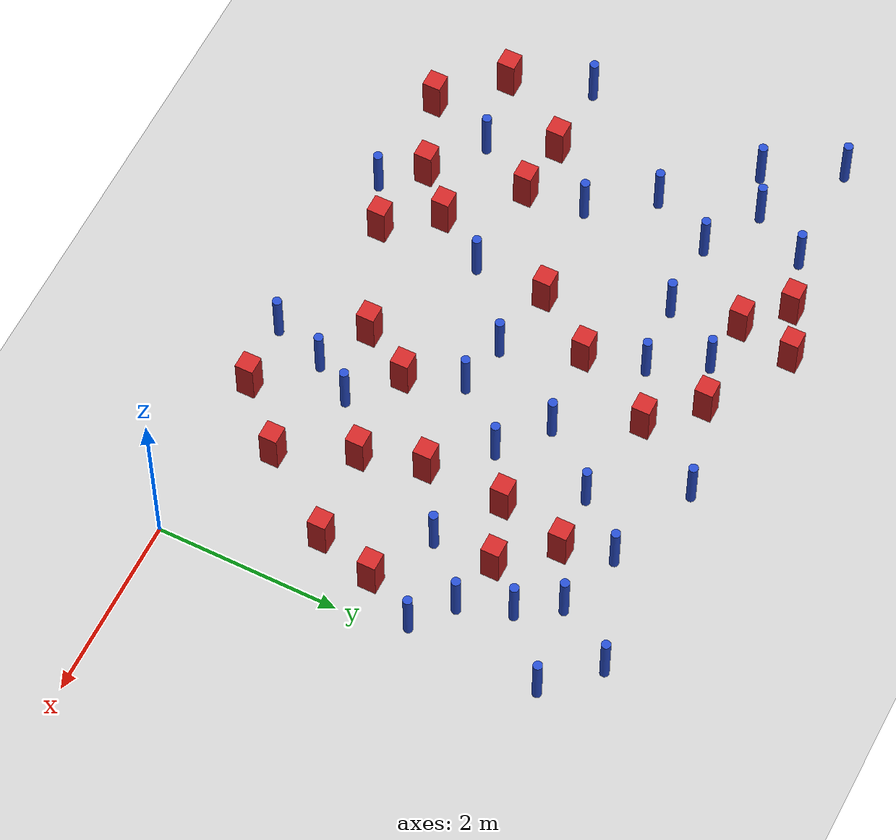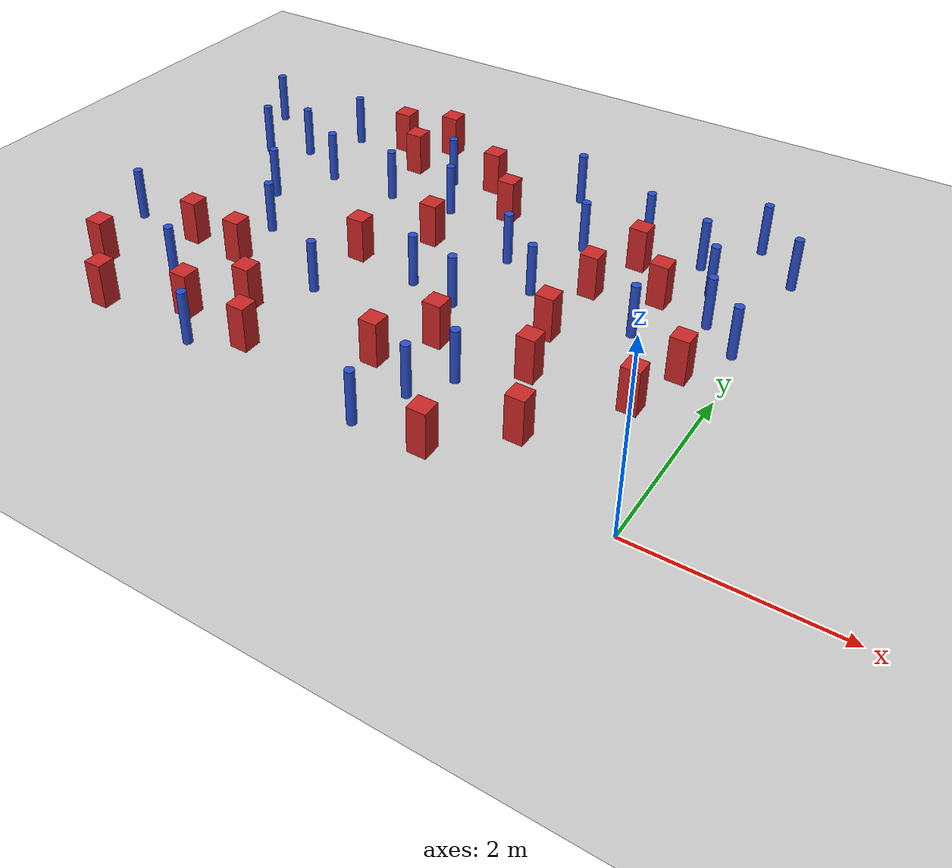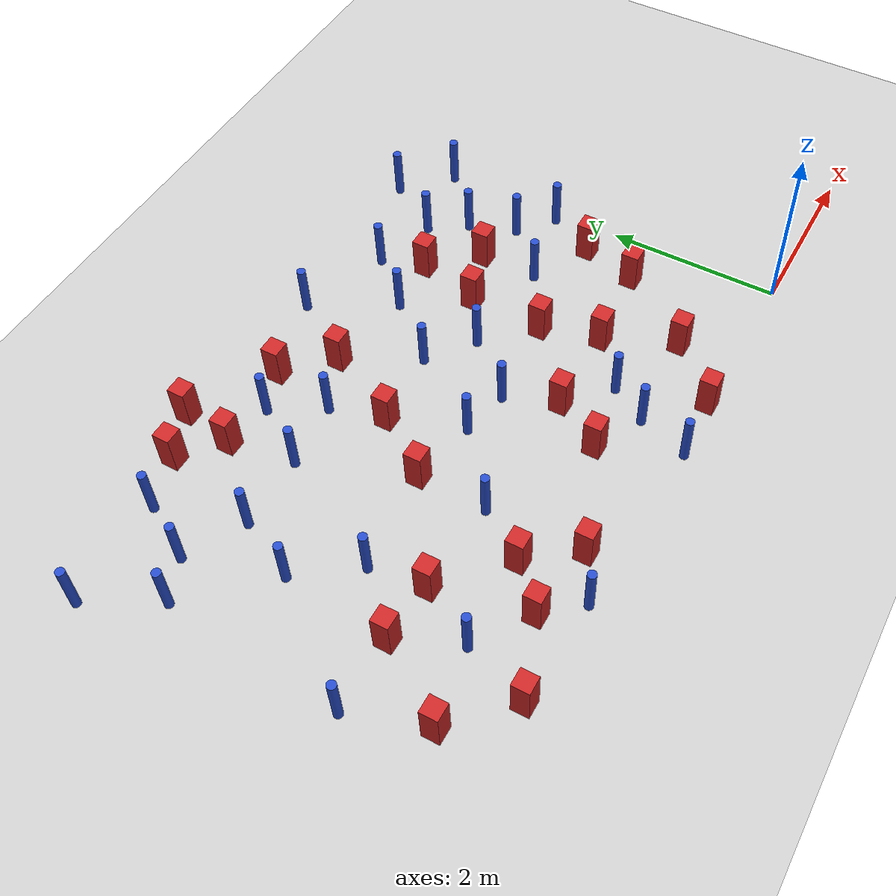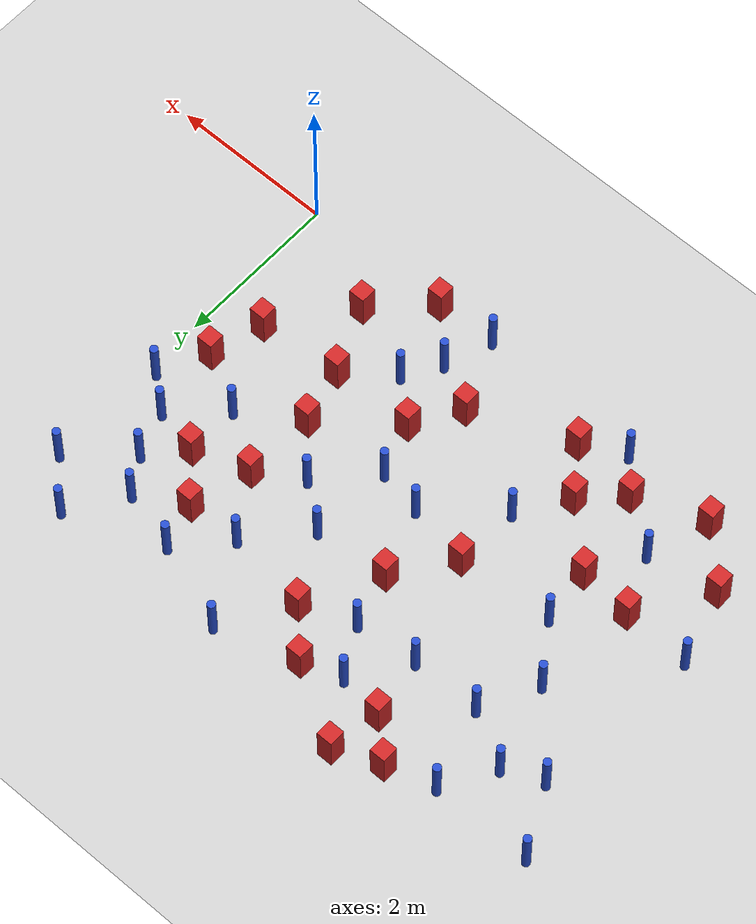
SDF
<sdf version="1.6">
 <world name="default">
  <model name="ground_plane">
   <static>1</static>
   <link name="link">
    <collision name="collision">
     <geometry><plane><normal>0 0 1</normal><size>100 100</size></plane></geometry>
     <surface><friction><ode><mu>100</mu><mu2>50</mu2></ode></friction></surface>
    </collision>
    <visual name="visual">
     <cast_shadows>0</cast_shadows>
     <geometry><plane><normal>0 0 1</normal><size>100 100</size></plane></geometry>
     <material>
      <ambient>1.0 1.0 1.0 1.0</ambient>
      <diffuse>0.8 0.8 0.8 1.0</diffuse>
      <specular>0.01 0.01 0.01 1.000000</specular>
     </material>
    </visual>
   </link>
  </model>
  <model name="square_post_obstacle1">
   <static>true</static>
   <pose>-1.78963820657 2.10112155441 8.22691968438e-08 7.2212513382e-06 -7.54495500217e-07 2.29674213826e-05</pose>
   <link name="link">
    <pose>0 0 0.25 0 -0 0</pose>
    <inertial>
     <mass>100</mass>
     <inertia>
      <ixx>0.166667</ixx>
      <ixy>0</ixy>
      <ixz>0</ixz>
      <iyy>0.166667</iyy>
      <iyz>0</iyz>
      <izz>0.166667</izz>
     </inertia>
    </inertial>
    <collision name="collision"><geometry><box><size>.2 .2 .5</size></box></geometry></collision>
    <visual name="visual">
     <geometry><box><size>.2 .2 .5</size></box></geometry>
     <material>
      <script><name>Gazebo/Red</name><uri>file://media/materials/scripts/gazebo.material</uri></script>
     </material>
    </visual>
   </link>
  </model>
  <model name="pole_obstacle3">
   <static>true</static>
   <pose>-2.15087941824 0.98724646966 2.88873142074e-08 -9.90536689701e-09 4.60219948992e-07 -1.20965994959e-07</pose>
   <link name="link">
    <pose>0 0 0.3 0 -0 0</pose>
    <inertial>
     <mass>1</mass>
     <inertia><ixx>0.145833</ixx><ixy>0</ixy><ixz>0</ixz><iyy>0.145833</iyy><iyz>0</iyz><izz>0.125</izz></inertia>
    </inertial>
    <collision name="collision">
     <geometry><cylinder><radius>0.05</radius><length>.6</length></cylinder></geometry>
    </collision>
    <visual name="visual">
     <geometry><cylinder><radius>0.05</radius><length>.6</length></cylinder></geometry>
     <material>
      <script><name>Gazebo/Blue</name><uri>file://media/materials/scripts/gazebo.material</uri></script>
     </material>
    </visual>
   </link>
  </model>
  <model name="square_post_obstacle7">
   <static>true</static>
   <pose>-5.01786289002 0.467314771592 8.22691968438e-08 7.2212513382e-06 -7.54495500217e-07 2.29674213826e-05</pose>
   <link name="link">
    <pose>0 0 0.25 0 -0 0</pose>
    <inertial>
     <mass>100</mass>
     <inertia>
      <ixx>0.166667</ixx>
      <ixy>0</ixy>
      <ixz>0</ixz>
      <iyy>0.166667</iyy>
      <iyz>0</iyz>
      <izz>0.166667</izz>
     </inertia>
    </inertial>
    <collision name="collision"><geometry><box><size>.2 .2 .5</size></box></geometry></collision>
    <visual name="visual">
     <geometry><box><size>.2 .2 .5</size></box></geometry>
     <material>
      <script><name>Gazebo/Red</name><uri>file://media/materials/scripts/gazebo.material</uri></script>
     </material>
    </visual>
   </link>
  </model>
  <model name="square_post_obstacle12">
   <static>true</static>
   <pose>-1.87809703781 0.0274566132606 8.22691968438e-08 7.2212513382e-06 -7.54495500217e-07 2.29674213826e-05</pose>
   <link name="link">
    <pose>0 0 0.25 0 -0 0</pose>
    <inertial>
     <mass>100</mass>
     <inertia>
      <ixx>0.166667</ixx>
      <ixy>0</ixy>
      <ixz>0</ixz>
      <iyy>0.166667</iyy>
      <iyz>0</iyz>
      <izz>0.166667</izz>
     </inertia>
    </inertial>
    <collision name="collision"><geometry><box><size>.2 .2 .5</size></box></geometry></collision>
    <visual name="visual">
     <geometry><box><size>.2 .2 .5</size></box></geometry>
     <material>
      <script><name>Gazebo/Red</name><uri>file://media/materials/scripts/gazebo.material</uri></script>
     </material>
    </visual>
   </link>
  </model>
  <model name="square_post_obstacle15">
   <static>true</static>
   <pose>-1.09674026211 3.2081970894 8.22691968438e-08 7.22125133819e-06 -7.54495500217e-07 2.29674213826e-05</pose>
   <link name="link">
    <pose>0 0 0.25 0 -0 0</pose>
    <inertial>
     <mass>100</mass>
     <inertia>
      <ixx>0.166667</ixx>
      <ixy>0</ixy>
      <ixz>0</ixz>
      <iyy>0.166667</iyy>
      <iyz>0</iyz>
      <izz>0.166667</izz>
     </inertia>
    </inertial>
    <collision name="collision"><geometry><box><size>.2 .2 .5</size></box></geometry></collision>
    <visual name="visual">
     <geometry><box><size>.2 .2 .5</size></box></geometry>
     <material>
      <script><name>Gazebo/Red</name><uri>file://media/materials/scripts/gazebo.material</uri></script>
     </material>
    </visual>
   </link>
  </model>
  <model name="square_post_obstacle18">
   <static>true</static>
   <pose>-1.26172231099 0.629585137746 8.22691968438e-08 7.2212513382e-06 -7.54495500217e-07 2.29674213826e-05</pose>
   <link name="link">
    <pose>0 0 0.25 0 -0 0</pose>
    <inertial>
     <mass>100</mass>
     <inertia>
      <ixx>0.166667</ixx>
      <ixy>0</ixy>
      <ixz>0</ixz>
      <iyy>0.166667</iyy>
      <iyz>0</iyz>
      <izz>0.166667</izz>
     </inertia>
    </inertial>
    <collision name="collision"><geometry><box><size>.2 .2 .5</size></box></geometry></collision>
    <visual name="visual">
     <geometry><box><size>.2 .2 .5</size></box></geometry>
     <material>
      <script><name>Gazebo/Red</name><uri>file://media/materials/scripts/gazebo.material</uri></script>
     </material>
    </visual>
   </link>
  </model>
  <model name="pole_obstacle11">
   <static>true</static>
   <pose>-5.76309928605 4.44789576285 2.88873142074e-08 -9.90536690842e-09 4.60219948965e-07 -1.20965994976e-07</pose>
   <link name="link">
    <pose>0 0 0.3 0 -0 0</pose>
    <inertial>
     <mass>1</mass>
     <inertia><ixx>0.145833</ixx><ixy>0</ixy><ixz>0</ixz><iyy>0.145833</iyy><iyz>0</iyz><izz>0.125</izz></inertia>
    </inertial>
    <collision name="collision">
     <geometry><cylinder><radius>0.05</radius><length>.6</length></cylinder></geometry>
    </collision>
    <visual name="visual">
     <geometry><cylinder><radius>0.05</radius><length>.6</length></cylinder></geometry>
     <material>
      <script><name>Gazebo/Blue</name><uri>file://media/materials/scripts/gazebo.material</uri></script>
     </material>
    </visual>
   </link>
  </model>
  <model name="square_post_obstacle22">
   <static>true</static>
   <pose>-3.24477735342 3.83881500266 8.22691968438e-08 7.2212513382e-06 -7.54495500217e-07 2.29674213826e-05</pose>
   <link name="link">
    <pose>0 0 0.25 0 -0 0</pose>
    <inertial>
     <mass>100</mass>
     <inertia>
      <ixx>0.166667</ixx>
      <ixy>0</ixy>
      <ixz>0</ixz>
      <iyy>0.166667</iyy>
      <iyz>0</iyz>
      <izz>0.166667</izz>
     </inertia>
    </inertial>
    <collision name="collision"><geometry><box><size>.2 .2 .5</size></box></geometry></collision>
    <visual name="visual">
     <geometry><box><size>.2 .2 .5</size></box></geometry>
     <material>
      <script><name>Gazebo/Red</name><uri>file://media/materials/scripts/gazebo.material</uri></script>
     </material>
    </visual>
   </link>
  </model>
  <model name="pole_obstacle14">
   <static>true</static>
   <pose>-2.21424441425 3.69005767806 2.88873142074e-08 -9.90536690232e-09 4.6021994898e-07 -1.20965994968e-07</pose>
   <link name="link">
    <pose>0 0 0.3 0 -0 0</pose>
    <inertial>
     <mass>1</mass>
     <inertia><ixx>0.145833</ixx><ixy>0</ixy><ixz>0</ixz><iyy>0.145833</iyy><iyz>0</iyz><izz>0.125</izz></inertia>
    </inertial>
    <collision name="collision">
     <geometry><cylinder><radius>0.05</radius><length>.6</length></cylinder></geometry>
    </collision>
    <visual name="visual">
     <geometry><cylinder><radius>0.05</radius><length>.6</length></cylinder></geometry>
     <material>
      <script><name>Gazebo/Blue</name><uri>file://media/materials/scripts/gazebo.material</uri></script>
     </material>
    </visual>
   </link>
  </model>
  <model name="square_post_obstacle29">
   <static>true</static>
   <pose>-4.64062499272 4.85331166047 8.22691968438e-08 7.2212513382e-06 -7.54495500217e-07 2.29674213826e-05</pose>
   <link name="link">
    <pose>0 0 0.25 0 -0 0</pose>
    <inertial>
     <mass>100</mass>
     <inertia>
      <ixx>0.166667</ixx>
      <ixy>0</ixy>
      <ixz>0</ixz>
      <iyy>0.166667</iyy>
      <iyz>0</iyz>
      <izz>0.166667</izz>
     </inertia>
    </inertial>
    <collision name="collision"><geometry><box><size>.2 .2 .5</size></box></geometry></collision>
    <visual name="visual">
     <geometry><box><size>.2 .2 .5</size></box></geometry>
     <material>
      <script><name>Gazebo/Red</name><uri>file://media/materials/scripts/gazebo.material</uri></script>
     </material>
    </visual>
   </link>
  </model>
  <model name="pole_obstacle42">
   <static>true</static>
   <pose>-6.74005997867 1.59109194103 2.88873142074e-08 -9.90536689445e-09 4.60219948999e-07 -1.20965994956e-07</pose>
   <link name="link">
    <pose>0 0 0.3 0 -0 0</pose>
    <inertial>
     <mass>1</mass>
     <inertia><ixx>0.145833</ixx><ixy>0</ixy><ixz>0</ixz><iyy>0.145833</iyy><iyz>0</iyz><izz>0.125</izz></inertia>
    </inertial>
    <collision name="collision">
     <geometry><cylinder><radius>0.05</radius><length>.6</length></cylinder></geometry>
    </collision>
    <visual name="visual">
     <geometry><cylinder><radius>0.05</radius><length>.6</length></cylinder></geometry>
     <material>
      <script><name>Gazebo/Blue</name><uri>file://media/materials/scripts/gazebo.material</uri></script>
     </material>
    </visual>
   </link>
  </model>
  <model name="pole_obstacle44">
   <static>true</static>
   <pose>-5.46587398347 3.49106499663 2.88873142074e-08 -9.90536690245e-09 4.6021994898e-07 -1.20965994966e-07</pose>
   <link name="link">
    <pose>0 0 0.3 0 -0 0</pose>
    <inertial>
     <mass>1</mass>
     <inertia><ixx>0.145833</ixx><ixy>0</ixy><ixz>0</ixz><iyy>0.145833</iyy><iyz>0</iyz><izz>0.125</izz></inertia>
    </inertial>
    <collision name="collision">
     <geometry><cylinder><radius>0.05</radius><length>.6</length></cylinder></geometry>
    </collision>
    <visual name="visual">
     <geometry><cylinder><radius>0.05</radius><length>.6</length></cylinder></geometry>
     <material>
      <script><name>Gazebo/Blue</name><uri>file://media/materials/scripts/gazebo.material</uri></script>
     </material>
    </visual>
   </link>
  </model>
  <model name="pole_obstacle48">
   <static>true</static>
   <pose>-2.73074959858 4.61885092774 2.88873142074e-08 -9.90536689859e-09 4.60219948989e-07 -1.20965994961e-07</pose>
   <link name="link">
    <pose>0 0 0.3 0 -0 0</pose>
    <inertial>
     <mass>1</mass>
     <inertia><ixx>0.145833</ixx><ixy>0</ixy><ixz>0</ixz><iyy>0.145833</iyy><iyz>0</iyz><izz>0.125</izz></inertia>
    </inertial>
    <collision name="collision">
     <geometry><cylinder><radius>0.05</radius><length>.6</length></cylinder></geometry>
    </collision>
    <visual name="visual">
     <geometry><cylinder><radius>0.05</radius><length>.6</length></cylinder></geometry>
     <material>
      <script><name>Gazebo/Blue</name><uri>file://media/materials/scripts/gazebo.material</uri></script>
     </material>
    </visual>
   </link>
  </model>
  <model name="square_post_obstacle50">
   <static>true</static>
   <pose>-0.421134184235 2.17919900012 8.22691968438e-08 7.2212513382e-06 -7.54495500217e-07 2.29674213826e-05</pose>
   <link name="link">
    <pose>0 0 0.25 0 -0 0</pose>
    <inertial>
     <mass>100</mass>
     <inertia>
      <ixx>0.166667</ixx>
      <ixy>0</ixy>
      <ixz>0</ixz>
      <iyy>0.166667</iyy>
      <iyz>0</iyz>
      <izz>0.166667</izz>
     </inertia>
    </inertial>
    <collision name="collision"><geometry><box><size>.2 .2 .5</size></box></geometry></collision>
    <visual name="visual">
     <geometry><box><size>.2 .2 .5</size></box></geometry>
     <material>
      <script><name>Gazebo/Red</name><uri>file://media/materials/scripts/gazebo.material</uri></script>
     </material>
    </visual>
   </link>
  </model>
  <model name="pole_obstacle54">
   <static>true</static>
   <pose>-4.19496934189 1.46841636191 2.88873142074e-08 -9.90536689445e-09 4.60219948999e-07 -1.20965994956e-07</pose>
   <link name="link">
    <pose>0 0 0.3 0 -0 0</pose>
    <inertial>
     <mass>1</mass>
     <inertia><ixx>0.145833</ixx><ixy>0</ixy><ixz>0</ixz><iyy>0.145833</iyy><iyz>0</iyz><izz>0.125</izz></inertia>
    </inertial>
    <collision name="collision">
     <geometry><cylinder><radius>0.05</radius><length>.6</length></cylinder></geometry>
    </collision>
    <visual name="visual">
     <geometry><cylinder><radius>0.05</radius><length>.6</length></cylinder></geometry>
     <material>
      <script><name>Gazebo/Blue</name><uri>file://media/materials/scripts/gazebo.material</uri></script>
     </material>
    </visual>
   </link>
  </model>
  <model name="pole_obstacle56">
   <static>true</static>
   <pose>-0.0509533749557 4.20188417264 2.88873142074e-08 -9.90536689643e-09 4.60219948994e-07 -1.20965994959e-07</pose>
   <link name="link">
    <pose>0 0 0.3 0 -0 0</pose>
    <inertial>
     <mass>1</mass>
     <inertia><ixx>0.145833</ixx><ixy>0</ixy><ixz>0</ixz><iyy>0.145833</iyy><iyz>0</iyz><izz>0.125</izz></inertia>
    </inertial>
    <collision name="collision">
     <geometry><cylinder><radius>0.05</radius><length>.6</length></cylinder></geometry>
    </collision>
    <visual name="visual">
     <geometry><cylinder><radius>0.05</radius><length>.6</length></cylinder></geometry>
     <material>
      <script><name>Gazebo/Blue</name><uri>file://media/materials/scripts/gazebo.material</uri></script>
     </material>
    </visual>
   </link>
  </model>
  <model name="pole_obstacle59">
   <static>true</static>
   <pose>-2.60380876906 -0.0218418800861 2.88873142074e-08 -9.90536689502e-09 4.60219948997e-07 -1.20965994956e-07</pose>
   <link name="link">
    <pose>0 0 0.3 0 -0 0</pose>
    <inertial>
     <mass>1</mass>
     <inertia><ixx>0.145833</ixx><ixy>0</ixy><ixz>0</ixz><iyy>0.145833</iyy><iyz>0</iyz><izz>0.125</izz></inertia>
    </inertial>
    <collision name="collision">
     <geometry><cylinder><radius>0.05</radius><length>.6</length></cylinder></geometry>
    </collision>
    <visual name="visual">
     <geometry><cylinder><radius>0.05</radius><length>.6</length></cylinder></geometry>
     <material>
      <script><name>Gazebo/Blue</name><uri>file://media/materials/scripts/gazebo.material</uri></script>
     </material>
    </visual>
   </link>
  </model>
  <model name="pole_obstacle72">
   <static>true</static>
   <pose>-3.39605623945 2.13067826812 2.88873142074e-08 -9.90536690232e-09 4.6021994898e-07 -1.20965994968e-07</pose>
   <link name="link">
    <pose>0 0 0.3 0 -0 0</pose>
    <inertial>
     <mass>1</mass>
     <inertia><ixx>0.145833</ixx><ixy>0</ixy><ixz>0</ixz><iyy>0.145833</iyy><iyz>0</iyz><izz>0.125</izz></inertia>
    </inertial>
    <collision name="collision">
     <geometry><cylinder><radius>0.05</radius><length>.6</length></cylinder></geometry>
    </collision>
    <visual name="visual">
     <geometry><cylinder><radius>0.05</radius><length>.6</length></cylinder></geometry>
     <material>
      <script><name>Gazebo/Blue</name><uri>file://media/materials/scripts/gazebo.material</uri></script>
     </material>
    </visual>
   </link>
  </model>
  <model name="pole_obstacle78">
   <static>true</static>
   <pose>-4.19204416638 4.15540261954 2.88873142074e-08 -9.90536690842e-09 4.60219948965e-07 -1.20965994976e-07</pose>
   <link name="link">
    <pose>0 0 0.3 0 -0 0</pose>
    <inertial>
     <mass>1</mass>
     <inertia><ixx>0.145833</ixx><ixy>0</ixy><ixz>0</ixz><iyy>0.145833</iyy><iyz>0</iyz><izz>0.125</izz></inertia>
    </inertial>
    <collision name="collision">
     <geometry><cylinder><radius>0.05</radius><length>.6</length></cylinder></geometry>
    </collision>
    <visual name="visual">
     <geometry><cylinder><radius>0.05</radius><length>.6</length></cylinder></geometry>
     <material>
      <script><name>Gazebo/Blue</name><uri>file://media/materials/scripts/gazebo.material</uri></script>
     </material>
    </visual>
   </link>
  </model>
  <model name="pole_obstacle91">
   <static>true</static>
   <pose>-2.27755603164 2.63739634442 2.88873142074e-08 -9.90536690232e-09 4.6021994898e-07 -1.20965994968e-07</pose>
   <link name="link">
    <pose>0 0 0.3 0 -0 0</pose>
    <inertial>
     <mass>1</mass>
     <inertia><ixx>0.145833</ixx><ixy>0</ixy><ixz>0</ixz><iyy>0.145833</iyy><iyz>0</iyz><izz>0.125</izz></inertia>
    </inertial>
    <collision name="collision">
     <geometry><cylinder><radius>0.05</radius><length>.6</length></cylinder></geometry>
    </collision>
    <visual name="visual">
     <geometry><cylinder><radius>0.05</radius><length>.6</length></cylinder></geometry>
     <material>
      <script><name>Gazebo/Blue</name><uri>file://media/materials/scripts/gazebo.material</uri></script>
     </material>
    </visual>
   </link>
  </model>
  <model name="pole_obstacle92">
   <static>true</static>
   <pose>-0.985309186136 4.04169364134 2.88873142074e-08 -9.90536689674e-09 4.60219948993e-07 -1.20965994957e-07</pose>
   <link name="link">
    <pose>0 0 0.3 0 -0 0</pose>
    <inertial>
     <mass>1</mass>
     <inertia><ixx>0.145833</ixx><ixy>0</ixy><ixz>0</ixz><iyy>0.145833</iyy><iyz>0</iyz><izz>0.125</izz></inertia>
    </inertial>
    <collision name="collision">
     <geometry><cylinder><radius>0.05</radius><length>.6</length></cylinder></geometry>
    </collision>
    <visual name="visual">
     <geometry><cylinder><radius>0.05</radius><length>.6</length></cylinder></geometry>
     <material>
      <script><name>Gazebo/Blue</name><uri>file://media/materials/scripts/gazebo.material</uri></script>
     </material>
    </visual>
   </link>
  </model>
  <model name="pole_obstacle99">
   <static>true</static>
   <pose>-0.121093915219 2.74798623756 2.88873142074e-08 -9.90536689683e-09 4.60219948993e-07 -1.20965994959e-07</pose>
   <link name="link">
    <pose>0 0 0.3 0 -0 0</pose>
    <inertial>
     <mass>1</mass>
     <inertia><ixx>0.145833</ixx><ixy>0</ixy><ixz>0</ixz><iyy>0.145833</iyy><iyz>0</iyz><izz>0.125</izz></inertia>
    </inertial>
    <collision name="collision">
     <geometry><cylinder><radius>0.05</radius><length>.6</length></cylinder></geometry>
    </collision>
    <visual name="visual">
     <geometry><cylinder><radius>0.05</radius><length>.6</length></cylinder></geometry>
     <material>
      <script><name>Gazebo/Blue</name><uri>file://media/materials/scripts/gazebo.material</uri></script>
     </material>
    </visual>
   </link>
  </model>
  <model name="square_post_obstacle97">
   <static>true</static>
   <pose>-4.17415604072 2.26912684449 8.22691968438e-08 7.2212513382e-06 -7.54495500217e-07 2.29674213826e-05</pose>
   <link name="link">
    <pose>0 0 0.25 0 -0 0</pose>
    <inertial>
     <mass>100</mass>
     <inertia>
      <ixx>0.166667</ixx>
      <ixy>0</ixy>
      <ixz>0</ixz>
      <iyy>0.166667</iyy>
      <iyz>0</iyz>
      <izz>0.166667</izz>
     </inertia>
    </inertial>
    <collision name="collision"><geometry><box><size>.2 .2 .5</size></box></geometry></collision>
    <visual name="visual">
     <geometry><box><size>.2 .2 .5</size></box></geometry>
     <material>
      <script><name>Gazebo/Red</name><uri>file://media/materials/scripts/gazebo.material</uri></script>
     </material>
    </visual>
   </link>
  </model>
  <model name="square_post_obstacle98">
   <static>true</static>
   <pose>-1.61087557266 1.42753985345 8.22691968438e-08 7.2212513382e-06 -7.54495500217e-07 2.29674213826e-05</pose>
   <link name="link">
    <pose>0 0 0.25 0 -0 0</pose>
    <inertial>
     <mass>100</mass>
     <inertia>
      <ixx>0.166667</ixx>
      <ixy>0</ixy>
      <ixz>0</ixz>
      <iyy>0.166667</iyy>
      <iyz>0</iyz>
      <izz>0.166667</izz>
     </inertia>
    </inertial>
    <collision name="collision"><geometry><box><size>.2 .2 .5</size></box></geometry></collision>
    <visual name="visual">
     <geometry><box><size>.2 .2 .5</size></box></geometry>
     <material>
      <script><name>Gazebo/Red</name><uri>file://media/materials/scripts/gazebo.material</uri></script>
     </material>
    </visual>
   </link>
  </model>
  <model name="pole_obstacle112">
   <static>true</static>
   <pose>-2.78522631257 3.03024028167 2.88873142074e-08 -9.90536690232e-09 4.6021994898e-07 -1.20965994968e-07</pose>
   <link name="link">
    <pose>0 0 0.3 0 -0 0</pose>
    <inertial>
     <mass>1</mass>
     <inertia><ixx>0.145833</ixx><ixy>0</ixy><ixz>0</ixz><iyy>0.145833</iyy><iyz>0</iyz><izz>0.125</izz></inertia>
    </inertial>
    <collision name="collision">
     <geometry><cylinder><radius>0.05</radius><length>.6</length></cylinder></geometry>
    </collision>
    <visual name="visual">
     <geometry><cylinder><radius>0.05</radius><length>.6</length></cylinder></geometry>
     <material>
      <script><name>Gazebo/Blue</name><uri>file://media/materials/scripts/gazebo.material</uri></script>
     </material>
    </visual>
   </link>
  </model>
  <model name="square_post_obstacle101">
   <static>true</static>
   <pose>-0.602405472952 1.5282955751 8.22691968438e-08 7.2212513382e-06 -7.54495500217e-07 2.29674213826e-05</pose>
   <link name="link">
    <pose>0 0 0.25 0 -0 0</pose>
    <inertial>
     <mass>100</mass>
     <inertia>
      <ixx>0.166667</ixx>
      <ixy>0</ixy>
      <ixz>0</ixz>
      <iyy>0.166667</iyy>
      <iyz>0</iyz>
      <izz>0.166667</izz>
     </inertia>
    </inertial>
    <collision name="collision"><geometry><box><size>.2 .2 .5</size></box></geometry></collision>
    <visual name="visual">
     <geometry><box><size>.2 .2 .5</size></box></geometry>
     <material>
      <script><name>Gazebo/Red</name><uri>file://media/materials/scripts/gazebo.material</uri></script>
     </material>
    </visual>
   </link>
  </model>
  <model name="square_post_obstacle105">
   <static>true</static>
   <pose>-2.63488867064 1.40961520242 8.22691968438e-08 7.2212513382e-06 -7.54495500217e-07 2.29674213826e-05</pose>
   <link name="link">
    <pose>0 0 0.25 0 -0 0</pose>
    <inertial>
     <mass>100</mass>
     <inertia>
      <ixx>0.166667</ixx>
      <ixy>0</ixy>
      <ixz>0</ixz>
      <iyy>0.166667</iyy>
      <iyz>0</iyz>
      <izz>0.166667</izz>
     </inertia>
    </inertial>
    <collision name="collision"><geometry><box><size>.2 .2 .5</size></box></geometry></collision>
    <visual name="visual">
     <geometry><box><size>.2 .2 .5</size></box></geometry>
     <material>
      <script><name>Gazebo/Red</name><uri>file://media/materials/scripts/gazebo.material</uri></script>
     </material>
    </visual>
   </link>
  </model>
  <model name="square_post_obstacle118">
   <static>true</static>
   <pose>-4.75215234841 4.23568710527 8.22691968438e-08 7.2212513382e-06 -7.54495500217e-07 2.29674213826e-05</pose>
   <link name="link">
    <pose>0 0 0.25 0 -0 0</pose>
    <inertial>
     <mass>100</mass>
     <inertia>
      <ixx>0.166667</ixx>
      <ixy>0</ixy>
      <ixz>0</ixz>
      <iyy>0.166667</iyy>
      <iyz>0</iyz>
      <izz>0.166667</izz>
     </inertia>
    </inertial>
    <collision name="collision"><geometry><box><size>.2 .2 .5</size></box></geometry></collision>
    <visual name="visual">
     <geometry><box><size>.2 .2 .5</size></box></geometry>
     <material>
      <script><name>Gazebo/Red</name><uri>file://media/materials/scripts/gazebo.material</uri></script>
     </material>
    </visual>
   </link>
  </model>
  <model name="square_post_obstacle129">
   <static>true</static>
   <pose>-6.46272062297 0.726372311676 8.22691968438e-08 7.2212513382e-06 -7.54495500217e-07 2.29674213826e-05</pose>
   <link name="link">
    <pose>0 0 0.25 0 -0 0</pose>
    <inertial>
     <mass>100</mass>
     <inertia>
      <ixx>0.166667</ixx>
      <ixy>0</ixy>
      <ixz>0</ixz>
      <iyy>0.166667</iyy>
      <iyz>0</iyz>
      <izz>0.166667</izz>
     </inertia>
    </inertial>
    <collision name="collision"><geometry><box><size>.2 .2 .5</size></box></geometry></collision>
    <visual name="visual">
     <geometry><box><size>.2 .2 .5</size></box></geometry>
     <material>
      <script><name>Gazebo/Red</name><uri>file://media/materials/scripts/gazebo.material</uri></script>
     </material>
    </visual>
   </link>
  </model>
  <model name="pole_obstacle145">
   <static>true</static>
   <pose>-6.1085727568 3.84238631887 2.88873142074e-08 -9.90536690245e-09 4.6021994898e-07 -1.20965994966e-07</pose>
   <link name="link">
    <pose>0 0 0.3 0 -0 0</pose>
    <inertial>
     <mass>1</mass>
     <inertia><ixx>0.145833</ixx><ixy>0</ixy><ixz>0</ixz><iyy>0.145833</iyy><iyz>0</iyz><izz>0.125</izz></inertia>
    </inertial>
    <collision name="collision">
     <geometry><cylinder><radius>0.05</radius><length>.6</length></cylinder></geometry>
    </collision>
    <visual name="visual">
     <geometry><cylinder><radius>0.05</radius><length>.6</length></cylinder></geometry>
     <material>
      <script><name>Gazebo/Blue</name><uri>file://media/materials/scripts/gazebo.material</uri></script>
     </material>
    </visual>
   </link>
  </model>
  <model name="pole_obstacle152">
   <static>true</static>
   <pose>-3.86294115153 3.57821129591 2.88873142074e-08 -9.90536689597e-09 4.60219948995e-07 -1.20965994957e-07</pose>
   <link name="link">
    <pose>0 0 0.3 0 -0 0</pose>
    <inertial>
     <mass>1</mass>
     <inertia><ixx>0.145833</ixx><ixy>0</ixy><ixz>0</ixz><iyy>0.145833</iyy><iyz>0</iyz><izz>0.125</izz></inertia>
    </inertial>
    <collision name="collision">
     <geometry><cylinder><radius>0.05</radius><length>.6</length></cylinder></geometry>
    </collision>
    <visual name="visual">
     <geometry><cylinder><radius>0.05</radius><length>.6</length></cylinder></geometry>
     <material>
      <script><name>Gazebo/Blue</name><uri>file://media/materials/scripts/gazebo.material</uri></script>
     </material>
    </visual>
   </link>
  </model>
  <model name="pole_obstacle153">
   <static>true</static>
   <pose>-4.66759402695 0.0742748828355 2.88873142074e-08 -9.90536689222e-09 4.60219949004e-07 -1.20965994951e-07</pose>
   <link name="link">
    <pose>0 0 0.3 0 -0 0</pose>
    <inertial>
     <mass>1</mass>
     <inertia><ixx>0.145833</ixx><ixy>0</ixy><ixz>0</ixz><iyy>0.145833</iyy><iyz>0</iyz><izz>0.125</izz></inertia>
    </inertial>
    <collision name="collision">
     <geometry><cylinder><radius>0.05</radius><length>.6</length></cylinder></geometry>
    </collision>
    <visual name="visual">
     <geometry><cylinder><radius>0.05</radius><length>.6</length></cylinder></geometry>
     <material>
      <script><name>Gazebo/Blue</name><uri>file://media/materials/scripts/gazebo.material</uri></script>
     </material>
    </visual>
   </link>
  </model>
  <model name="square_post_obstacle143">
   <static>true</static>
   <pose>-4.17269374956 0.349718284404 8.22691968438e-08 7.2212513382e-06 -7.54495500217e-07 2.29674213826e-05</pose>
   <link name="link">
    <pose>0 0 0.25 0 -0 0</pose>
    <inertial>
     <mass>100</mass>
     <inertia>
      <ixx>0.166667</ixx>
      <ixy>0</ixy>
      <ixz>0</ixz>
      <iyy>0.166667</iyy>
      <iyz>0</iyz>
      <izz>0.166667</izz>
     </inertia>
    </inertial>
    <collision name="collision"><geometry><box><size>.2 .2 .5</size></box></geometry></collision>
    <visual name="visual">
     <geometry><box><size>.2 .2 .5</size></box></geometry>
     <material>
      <script><name>Gazebo/Red</name><uri>file://media/materials/scripts/gazebo.material</uri></script>
     </material>
    </visual>
   </link>
  </model>
  <model name="square_post_obstacle146">
   <static>true</static>
   <pose>-5.25510510058 1.51653017398 8.22691968438e-08 7.2212513382e-06 -7.54495500217e-07 2.29674213826e-05</pose>
   <link name="link">
    <pose>0 0 0.25 0 -0 0</pose>
    <inertial>
     <mass>100</mass>
     <inertia>
      <ixx>0.166667</ixx>
      <ixy>0</ixy>
      <ixz>0</ixz>
      <iyy>0.166667</iyy>
      <iyz>0</iyz>
      <izz>0.166667</izz>
     </inertia>
    </inertial>
    <collision name="collision"><geometry><box><size>.2 .2 .5</size></box></geometry></collision>
    <visual name="visual">
     <geometry><box><size>.2 .2 .5</size></box></geometry>
     <material>
      <script><name>Gazebo/Red</name><uri>file://media/materials/scripts/gazebo.material</uri></script>
     </material>
    </visual>
   </link>
  </model>
  <model name="pole_obstacle160">
   <static>true</static>
   <pose>-1.70887875803 4.24946433649 2.88873142074e-08 -9.90536689852e-09 4.60219948989e-07 -1.2096599496e-07</pose>
   <link name="link">
    <pose>0 0 0.3 0 -0 0</pose>
    <inertial>
     <mass>1</mass>
     <inertia><ixx>0.145833</ixx><ixy>0</ixy><ixz>0</ixz><iyy>0.145833</iyy><iyz>0</iyz><izz>0.125</izz></inertia>
    </inertial>
    <collision name="collision">
     <geometry><cylinder><radius>0.05</radius><length>.6</length></cylinder></geometry>
    </collision>
    <visual name="visual">
     <geometry><cylinder><radius>0.05</radius><length>.6</length></cylinder></geometry>
     <material>
      <script><name>Gazebo/Blue</name><uri>file://media/materials/scripts/gazebo.material</uri></script>
     </material>
    </visual>
   </link>
  </model>
  <model name="square_post_obstacle155">
   <static>true</static>
   <pose>-2.97535295812 0.843871320648 8.22691968438e-08 7.2212513382e-06 -7.54495500217e-07 2.29674213826e-05</pose>
   <link name="link">
    <pose>0 0 0.25 0 -0 0</pose>
    <inertial>
     <mass>100</mass>
     <inertia>
      <ixx>0.166667</ixx>
      <ixy>0</ixy>
      <ixz>0</ixz>
      <iyy>0.166667</iyy>
      <iyz>0</iyz>
      <izz>0.166667</izz>
     </inertia>
    </inertial>
    <collision name="collision"><geometry><box><size>.2 .2 .5</size></box></geometry></collision>
    <visual name="visual">
     <geometry><box><size>.2 .2 .5</size></box></geometry>
     <material>
      <script><name>Gazebo/Red</name><uri>file://media/materials/scripts/gazebo.material</uri></script>
     </material>
    </visual>
   </link>
  </model>
  <model name="square_post_obstacle158">
   <static>true</static>
   <pose>-3.71765390254 4.32163100212 8.22691968438e-08 7.2212513382e-06 -7.54495500217e-07 2.29674213826e-05</pose>
   <link name="link">
    <pose>0 0 0.25 0 -0 0</pose>
    <inertial>
     <mass>100</mass>
     <inertia>
      <ixx>0.166667</ixx>
      <ixy>0</ixy>
      <ixz>0</ixz>
      <iyy>0.166667</iyy>
      <iyz>0</iyz>
      <izz>0.166667</izz>
     </inertia>
    </inertial>
    <collision name="collision"><geometry><box><size>.2 .2 .5</size></box></geometry></collision>
    <visual name="visual">
     <geometry><box><size>.2 .2 .5</size></box></geometry>
     <material>
      <script><name>Gazebo/Red</name><uri>file://media/materials/scripts/gazebo.material</uri></script>
     </material>
    </visual>
   </link>
  </model>
  <model name="square_post_obstacle166">
   <static>true</static>
   <pose>-5.91239788488 1.57391883508 8.22691968438e-08 7.2212513382e-06 -7.54495500217e-07 2.29674213826e-05</pose>
   <link name="link">
    <pose>0 0 0.25 0 -0 0</pose>
    <inertial>
     <mass>100</mass>
     <inertia>
      <ixx>0.166667</ixx>
      <ixy>0</ixy>
      <ixz>0</ixz>
      <iyy>0.166667</iyy>
      <iyz>0</iyz>
      <izz>0.166667</izz>
     </inertia>
    </inertial>
    <collision name="collision"><geometry><box><size>.2 .2 .5</size></box></geometry></collision>
    <visual name="visual">
     <geometry><box><size>.2 .2 .5</size></box></geometry>
     <material>
      <script><name>Gazebo/Red</name><uri>file://media/materials/scripts/gazebo.material</uri></script>
     </material>
    </visual>
   </link>
  </model>
  <model name="pole_obstacle178">
   <static>true</static>
   <pose>-0.518829819069 3.07847474339 2.88873142074e-08 -9.90536689656e-09 4.60219948993e-07 -1.20965994958e-07</pose>
   <link name="link">
    <pose>0 0 0.3 0 -0 0</pose>
    <inertial>
     <mass>1</mass>
     <inertia><ixx>0.145833</ixx><ixy>0</ixy><ixz>0</ixz><iyy>0.145833</iyy><iyz>0</iyz><izz>0.125</izz></inertia>
    </inertial>
    <collision name="collision">
     <geometry><cylinder><radius>0.05</radius><length>.6</length></cylinder></geometry>
    </collision>
    <visual name="visual">
     <geometry><cylinder><radius>0.05</radius><length>.6</length></cylinder></geometry>
     <material>
      <script><name>Gazebo/Blue</name><uri>file://media/materials/scripts/gazebo.material</uri></script>
     </material>
    </visual>
   </link>
  </model>
  <model name="square_post_obstacle171">
   <static>true</static>
   <pose>-5.17890931926 4.62718067119 8.22691968438e-08 7.2212513382e-06 -7.54495500217e-07 2.29674213826e-05</pose>
   <link name="link">
    <pose>0 0 0.25 0 -0 0</pose>
    <inertial>
     <mass>100</mass>
     <inertia>
      <ixx>0.166667</ixx>
      <ixy>0</ixy>
      <ixz>0</ixz>
      <iyy>0.166667</iyy>
      <iyz>0</iyz>
      <izz>0.166667</izz>
     </inertia>
    </inertial>
    <collision name="collision"><geometry><box><size>.2 .2 .5</size></box></geometry></collision>
    <visual name="visual">
     <geometry><box><size>.2 .2 .5</size></box></geometry>
     <material>
      <script><name>Gazebo/Red</name><uri>file://media/materials/scripts/gazebo.material</uri></script>
     </material>
    </visual>
   </link>
  </model>
  <model name="pole_obstacle183">
   <static>true</static>
   <pose>-5.79463961989 2.81067694046 2.88873142074e-08 -9.90536690245e-09 4.6021994898e-07 -1.20965994966e-07</pose>
   <link name="link">
    <pose>0 0 0.3 0 -0 0</pose>
    <inertial>
     <mass>1</mass>
     <inertia><ixx>0.145833</ixx><ixy>0</ixy><ixz>0</ixz><iyy>0.145833</iyy><iyz>0</iyz><izz>0.125</izz></inertia>
    </inertial>
    <collision name="collision">
     <geometry><cylinder><radius>0.05</radius><length>.6</length></cylinder></geometry>
    </collision>
    <visual name="visual">
     <geometry><cylinder><radius>0.05</radius><length>.6</length></cylinder></geometry>
     <material>
      <script><name>Gazebo/Blue</name><uri>file://media/materials/scripts/gazebo.material</uri></script>
     </material>
    </visual>
   </link>
  </model>
  <model name="pole_obstacle184">
   <static>true</static>
   <pose>-5.32997038775 2.16343316903 2.88873142074e-08 -9.90536690245e-09 4.6021994898e-07 -1.20965994966e-07</pose>
   <link name="link">
    <pose>0 0 0.3 0 -0 0</pose>
    <inertial>
     <mass>1</mass>
     <inertia><ixx>0.145833</ixx><ixy>0</ixy><ixz>0</ixz><iyy>0.145833</iyy><iyz>0</iyz><izz>0.125</izz></inertia>
    </inertial>
    <collision name="collision">
     <geometry><cylinder><radius>0.05</radius><length>.6</length></cylinder></geometry>
    </collision>
    <visual name="visual">
     <geometry><cylinder><radius>0.05</radius><length>.6</length></cylinder></geometry>
     <material>
      <script><name>Gazebo/Blue</name><uri>file://media/materials/scripts/gazebo.material</uri></script>
     </material>
    </visual>
   </link>
  </model>
  <model name="pole_obstacle187">
   <static>true</static>
   <pose>-6.56855774918 3.63671599673 2.88873142074e-08 -9.90536690245e-09 4.6021994898e-07 -1.20965994966e-07</pose>
   <link name="link">
    <pose>0 0 0.3 0 -0 0</pose>
    <inertial>
     <mass>1</mass>
     <inertia><ixx>0.145833</ixx><ixy>0</ixy><ixz>0</ixz><iyy>0.145833</iyy><iyz>0</iyz><izz>0.125</izz></inertia>
    </inertial>
    <collision name="collision">
     <geometry><cylinder><radius>0.05</radius><length>.6</length></cylinder></geometry>
    </collision>
    <visual name="visual">
     <geometry><cylinder><radius>0.05</radius><length>.6</length></cylinder></geometry>
     <material>
      <script><name>Gazebo/Blue</name><uri>file://media/materials/scripts/gazebo.material</uri></script>
     </material>
    </visual>
   </link>
  </model>
  <model name="square_post_obstacle179">
   <static>true</static>
   <pose>-1.5671067389 3.72177317815 8.22691968438e-08 7.2212513382e-06 -7.54495500217e-07 2.29674213826e-05</pose>
   <link name="link">
    <pose>0 0 0.25 0 -0 0</pose>
    <inertial>
     <mass>100</mass>
     <inertia>
      <ixx>0.166667</ixx>
      <ixy>0</ixy>
      <ixz>0</ixz>
      <iyy>0.166667</iyy>
      <iyz>0</iyz>
      <izz>0.166667</izz>
     </inertia>
    </inertial>
    <collision name="collision"><geometry><box><size>.2 .2 .5</size></box></geometry></collision>
    <visual name="visual">
     <geometry><box><size>.2 .2 .5</size></box></geometry>
     <material>
      <script><name>Gazebo/Red</name><uri>file://media/materials/scripts/gazebo.material</uri></script>
     </material>
    </visual>
   </link>
  </model>
  <model name="square_post_obstacle183">
   <static>true</static>
   <pose>-1.76318059858 2.98246244453 8.22691968438e-08 7.2212513382e-06 -7.54495500217e-07 2.29674213826e-05</pose>
   <link name="link">
    <pose>0 0 0.25 0 -0 0</pose>
    <inertial>
     <mass>100</mass>
     <inertia>
      <ixx>0.166667</ixx>
      <ixy>0</ixy>
      <ixz>0</ixz>
      <iyy>0.166667</iyy>
      <iyz>0</iyz>
      <izz>0.166667</izz>
     </inertia>
    </inertial>
    <collision name="collision"><geometry><box><size>.2 .2 .5</size></box></geometry></collision>
    <visual name="visual">
     <geometry><box><size>.2 .2 .5</size></box></geometry>
     <material>
      <script><name>Gazebo/Red</name><uri>file://media/materials/scripts/gazebo.material</uri></script>
     </material>
    </visual>
   </link>
  </model>
  <model name="square_post_obstacle189">
   <static>true</static>
   <pose>-5.86136907815 0.142188544586 8.22691968438e-08 7.2212513382e-06 -7.54495500217e-07 2.29674213826e-05</pose>
   <link name="link">
    <pose>0 0 0.25 0 -0 0</pose>
    <inertial>
     <mass>100</mass>
     <inertia>
      <ixx>0.166667</ixx>
      <ixy>0</ixy>
      <ixz>0</ixz>
      <iyy>0.166667</iyy>
      <iyz>0</iyz>
      <izz>0.166667</izz>
     </inertia>
    </inertial>
    <collision name="collision"><geometry><box><size>.2 .2 .5</size></box></geometry></collision>
    <visual name="visual">
     <geometry><box><size>.2 .2 .5</size></box></geometry>
     <material>
      <script><name>Gazebo/Red</name><uri>file://media/materials/scripts/gazebo.material</uri></script>
     </material>
    </visual>
   </link>
  </model>
  <model name="square_post_obstacle194">
   <static>true</static>
   <pose>-4.57856208939 0.891546099652 8.22691968438e-08 7.2212513382e-06 -7.54495500217e-07 2.29674213826e-05</pose>
   <link name="link">
    <pose>0 0 0.25 0 -0 0</pose>
    <inertial>
     <mass>100</mass>
     <inertia>
      <ixx>0.166667</ixx>
      <ixy>0</ixy>
      <ixz>0</ixz>
      <iyy>0.166667</iyy>
      <iyz>0</iyz>
      <izz>0.166667</izz>
     </inertia>
    </inertial>
    <collision name="collision"><geometry><box><size>.2 .2 .5</size></box></geometry></collision>
    <visual name="visual">
     <geometry><box><size>.2 .2 .5</size></box></geometry>
     <material>
      <script><name>Gazebo/Red</name><uri>file://media/materials/scripts/gazebo.material</uri></script>
     </material>
    </visual>
   </link>
  </model>
  <model name="pole_obstacle197">
   <static>true</static>
   <pose>-6.98541913735 4.42780496981 2.88873142074e-08 -9.90536690842e-09 4.60219948965e-07 -1.20965994976e-07</pose>
   <link name="link">
    <pose>0 0 0.3 0 -0 0</pose>
    <inertial>
     <mass>1</mass>
     <inertia><ixx>0.145833</ixx><ixy>0</ixy><ixz>0</ixz><iyy>0.145833</iyy><iyz>0</iyz><izz>0.125</izz></inertia>
    </inertial>
    <collision name="collision">
     <geometry><cylinder><radius>0.05</radius><length>.6</length></cylinder></geometry>
    </collision>
    <visual name="visual">
     <geometry><cylinder><radius>0.05</radius><length>.6</length></cylinder></geometry>
     <material>
      <script><name>Gazebo/Blue</name><uri>file://media/materials/scripts/gazebo.material</uri></script>
     </material>
    </visual>
   </link>
  </model>
  <model name="pole_obstacle203">
   <static>true</static>
   <pose>-5.60509562041 0.881069215628 2.88873142074e-08 -9.90536689837e-09 4.60219948989e-07 -1.2096599496e-07</pose>
   <link name="link">
    <pose>0 0 0.3 0 -0 0</pose>
    <inertial>
     <mass>1</mass>
     <inertia><ixx>0.145833</ixx><ixy>0</ixy><ixz>0</ixz><iyy>0.145833</iyy><iyz>0</iyz><izz>0.125</izz></inertia>
    </inertial>
    <collision name="collision">
     <geometry><cylinder><radius>0.05</radius><length>.6</length></cylinder></geometry>
    </collision>
    <visual name="visual">
     <geometry><cylinder><radius>0.05</radius><length>.6</length></cylinder></geometry>
     <material>
      <script><name>Gazebo/Blue</name><uri>file://media/materials/scripts/gazebo.material</uri></script>
     </material>
    </visual>
   </link>
  </model>
  <model name="pole_obstacle204">
   <static>true</static>
   <pose>-2.84294559634 2.01744955796 2.88873142074e-08 -9.90536689662e-09 4.60219948993e-07 -1.20965994957e-07</pose>
   <link name="link">
    <pose>0 0 0.3 0 -0 0</pose>
    <inertial>
     <mass>1</mass>
     <inertia><ixx>0.145833</ixx><ixy>0</ixy><ixz>0</ixz><iyy>0.145833</iyy><iyz>0</iyz><izz>0.125</izz></inertia>
    </inertial>
    <collision name="collision">
     <geometry><cylinder><radius>0.05</radius><length>.6</length></cylinder></geometry>
    </collision>
    <visual name="visual">
     <geometry><cylinder><radius>0.05</radius><length>.6</length></cylinder></geometry>
     <material>
      <script><name>Gazebo/Blue</name><uri>file://media/materials/scripts/gazebo.material</uri></script>
     </material>
    </visual>
   </link>
  </model>
  <model name="pole_obstacle205">
   <static>true</static>
   <pose>-1.08552642022 2.54413406139 2.88873142074e-08 -9.90536689791e-09 4.6021994899e-07 -1.20965994959e-07</pose>
   <link name="link">
    <pose>0 0 0.3 0 -0 0</pose>
    <inertial>
     <mass>1</mass>
     <inertia><ixx>0.145833</ixx><ixy>0</ixy><ixz>0</ixz><iyy>0.145833</iyy><iyz>0</iyz><izz>0.125</izz></inertia>
    </inertial>
    <collision name="collision">
     <geometry><cylinder><radius>0.05</radius><length>.6</length></cylinder></geometry>
    </collision>
    <visual name="visual">
     <geometry><cylinder><radius>0.05</radius><length>.6</length></cylinder></geometry>
     <material>
      <script><name>Gazebo/Blue</name><uri>file://media/materials/scripts/gazebo.material</uri></script>
     </material>
    </visual>
   </link>
  </model>
  <model name="pole_obstacle212">
   <static>true</static>
   <pose>-0.712552473146 3.6211668326 2.88873142074e-08 -9.90536689636e-09 4.60219948994e-07 -1.20965994958e-07</pose>
   <link name="link">
    <pose>0 0 0.3 0 -0 0</pose>
    <inertial>
     <mass>1</mass>
     <inertia><ixx>0.145833</ixx><ixy>0</ixy><ixz>0</ixz><iyy>0.145833</iyy><iyz>0</iyz><izz>0.125</izz></inertia>
    </inertial>
    <collision name="collision">
     <geometry><cylinder><radius>0.05</radius><length>.6</length></cylinder></geometry>
    </collision>
    <visual name="visual">
     <geometry><cylinder><radius>0.05</radius><length>.6</length></cylinder></geometry>
     <material>
      <script><name>Gazebo/Blue</name><uri>file://media/materials/scripts/gazebo.material</uri></script>
     </material>
    </visual>
   </link>
  </model>
  <model name="square_post_obstacle214">
   <static>true</static>
   <pose>-3.69667377341 2.94752754933 8.22691968438e-08 7.2212513382e-06 -7.54495500217e-07 2.29674213826e-05</pose>
   <link name="link">
    <pose>0 0 0.25 0 -0 0</pose>
    <inertial>
     <mass>100</mass>
     <inertia>
      <ixx>0.166667</ixx>
      <ixy>0</ixy>
      <ixz>0</ixz>
      <iyy>0.166667</iyy>
      <iyz>0</iyz>
      <izz>0.166667</izz>
     </inertia>
    </inertial>
    <collision name="collision"><geometry><box><size>.2 .2 .5</size></box></geometry></collision>
    <visual name="visual">
     <geometry><box><size>.2 .2 .5</size></box></geometry>
     <material>
      <script><name>Gazebo/Red</name><uri>file://media/materials/scripts/gazebo.material</uri></script>
     </material>
    </visual>
   </link>
  </model>
  <model name="pole_obstacle218">
   <static>true</static>
   <pose>-2.4100438692 0.559636761562 2.88873142074e-08 -9.90536689285e-09 4.60219949002e-07 -1.20965994953e-07</pose>
   <link name="link">
    <pose>0 0 0.3 0 -0 0</pose>
    <inertial>
     <mass>1</mass>
     <inertia><ixx>0.145833</ixx><ixy>0</ixy><ixz>0</ixz><iyy>0.145833</iyy><iyz>0</iyz><izz>0.125</izz></inertia>
    </inertial>
    <collision name="collision">
     <geometry><cylinder><radius>0.05</radius><length>.6</length></cylinder></geometry>
    </collision>
    <visual name="visual">
     <geometry><cylinder><radius>0.05</radius><length>.6</length></cylinder></geometry>
     <material>
      <script><name>Gazebo/Blue</name><uri>file://media/materials/scripts/gazebo.material</uri></script>
     </material>
    </visual>
   </link>
  </model>
  <model name="pole_obstacle219">
   <static>true</static>
   <pose>-0.554610084909 4.69584495689 2.88873142074e-08 -9.90536689661e-09 4.60219948993e-07 -1.20965994957e-07</pose>
   <link name="link">
    <pose>0 0 0.3 0 -0 0</pose>
    <inertial>
     <mass>1</mass>
     <inertia><ixx>0.145833</ixx><ixy>0</ixy><ixz>0</ixz><iyy>0.145833</iyy><iyz>0</iyz><izz>0.125</izz></inertia>
    </inertial>
    <collision name="collision">
     <geometry><cylinder><radius>0.05</radius><length>.6</length></cylinder></geometry>
    </collision>
    <visual name="visual">
     <geometry><cylinder><radius>0.05</radius><length>.6</length></cylinder></geometry>
     <material>
      <script><name>Gazebo/Blue</name><uri>file://media/materials/scripts/gazebo.material</uri></script>
     </material>
    </visual>
   </link>
  </model>
  <model name="pole_obstacle226">
   <static>true</static>
   <pose>-4.62209999087 3.50226002041 2.88873142074e-08 -9.90536689878e-09 4.60219948988e-07 -1.20965994961e-07</pose>
   <link name="link">
    <pose>0 0 0.3 0 -0 0</pose>
    <inertial>
     <mass>1</mass>
     <inertia><ixx>0.145833</ixx><ixy>0</ixy><ixz>0</ixz><iyy>0.145833</iyy><iyz>0</iyz><izz>0.125</izz></inertia>
    </inertial>
    <collision name="collision">
     <geometry><cylinder><radius>0.05</radius><length>.6</length></cylinder></geometry>
    </collision>
    <visual name="visual">
     <geometry><cylinder><radius>0.05</radius><length>.6</length></cylinder></geometry>
     <material>
      <script><name>Gazebo/Blue</name><uri>file://media/materials/scripts/gazebo.material</uri></script>
     </material>
    </visual>
   </link>
  </model>
 </world>
</sdf>
